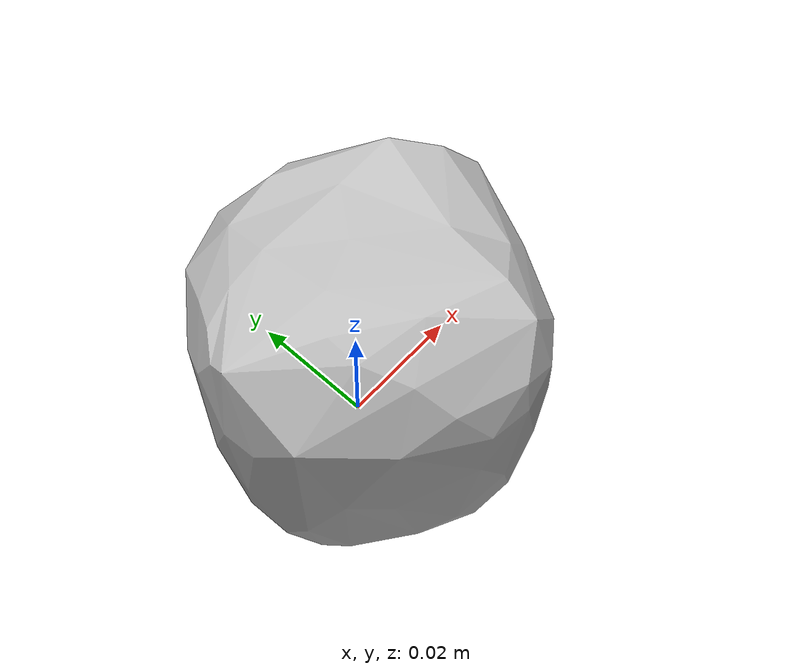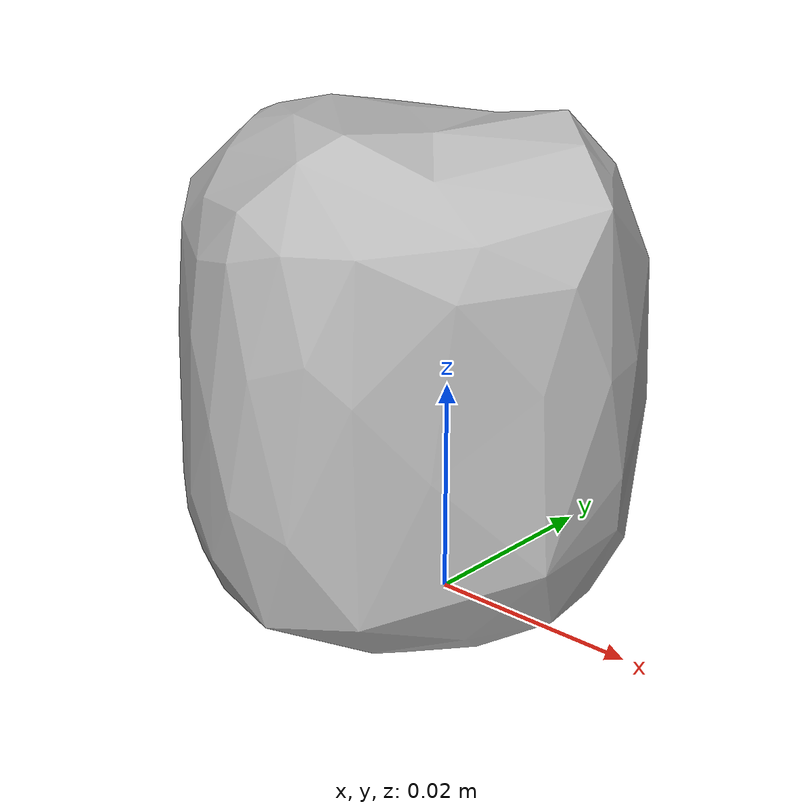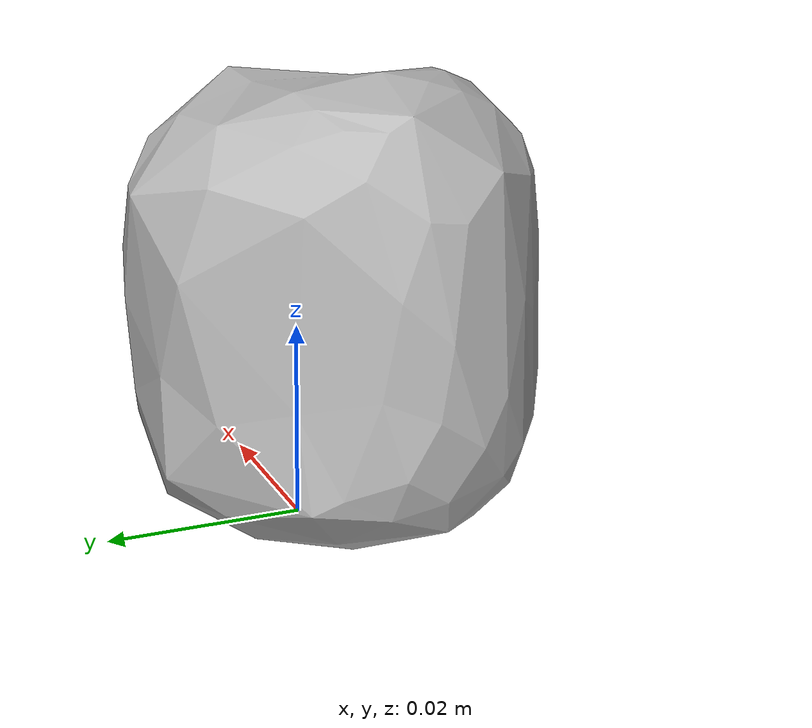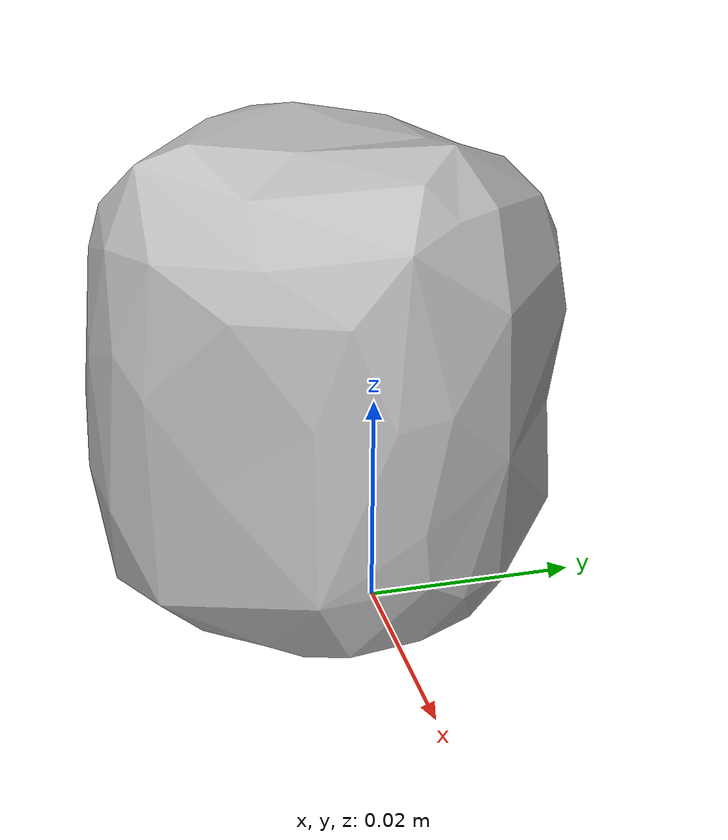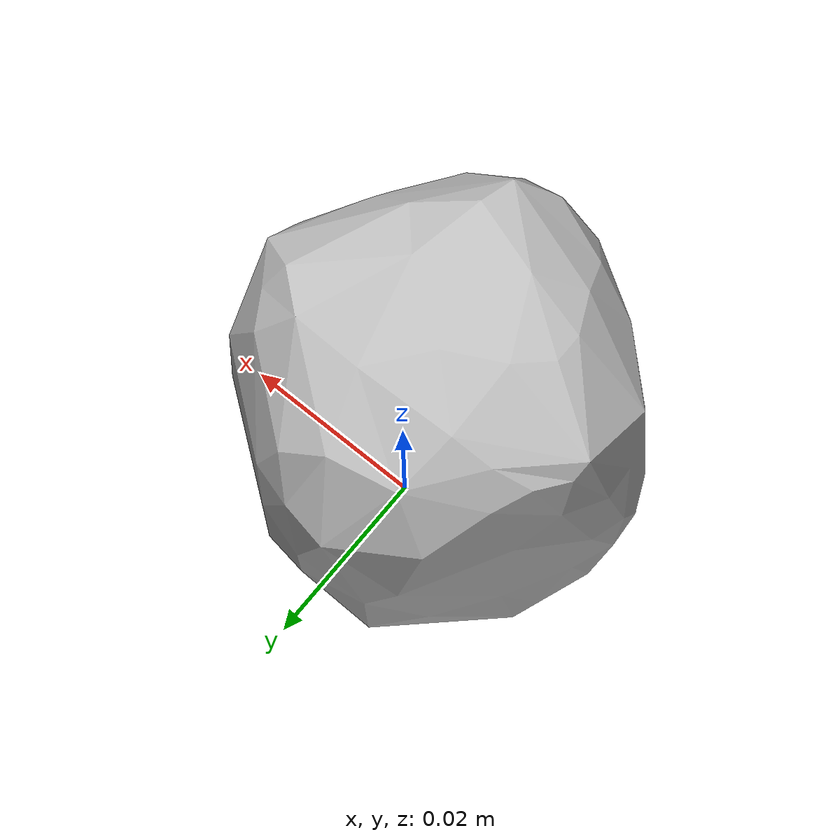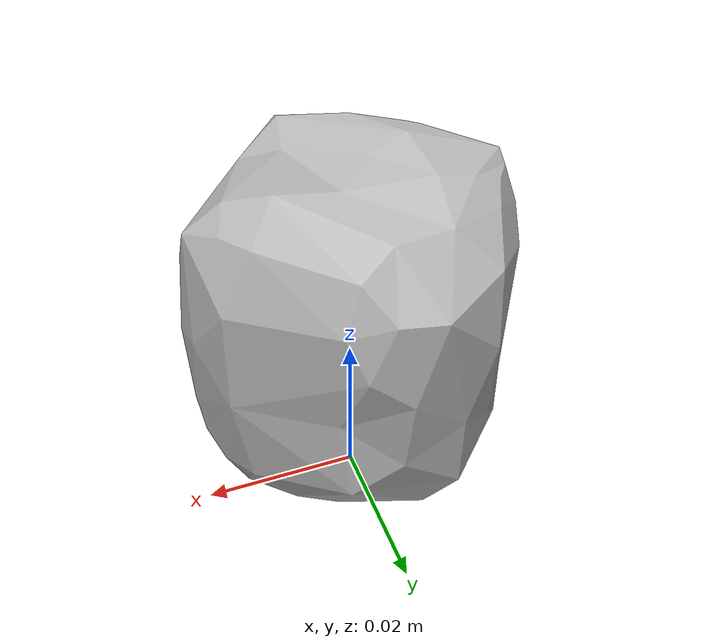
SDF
<?xml version='1.0'?>
<sdf version="1.4">
  <model name="073-i_lego_duplo">
    <static>false</static>
    <link name="link">
      <inertial>
        <pose>-0.0016885976567552656 -0.004045086121054907 0.02284717169221619 -0.032058667307547965 0.0400637401098544 1.810743807297067</pose>
        <mass>0.005077172801334268</mass>
        <inertia>
          <ixx>1.1597430805246229e-06</ixx>
          <ixy>8.956082477870066e-23</ixy>
          <ixz>-1.893589292281582e-22</ixz>
          <iyy>1.1508311976857577e-06</iyy>
          <iyz>-1.273137050869827e-24</iyz>
          <izz>9.838595257173791e-07</izz>
        </inertia>
      </inertial>
      <collision name="collision">
        <geometry>
          <mesh>
            <!-- Use a downsampled mesh for collisions -->
            <uri>model:///073-i_lego_duplo/073-i_lego_duplo_250_collision.stl</uri>
	        </mesh>
        </geometry>
        <surface>
      </surface>
      </collision>
      <visual name="visual">
        <geometry>
          <mesh>
            <uri>model:///073-i_lego_duplo/textured.obj</uri>
	        </mesh>
        </geometry>
        <material>
          <script>
            <uri>model:///073-i_lego_duplo/073-i_lego_duplo.material</uri>
            <name>073-i_lego_duplo</name>
          </script>
        </material>
      </visual>
    </link>
  </model>
</sdf>
